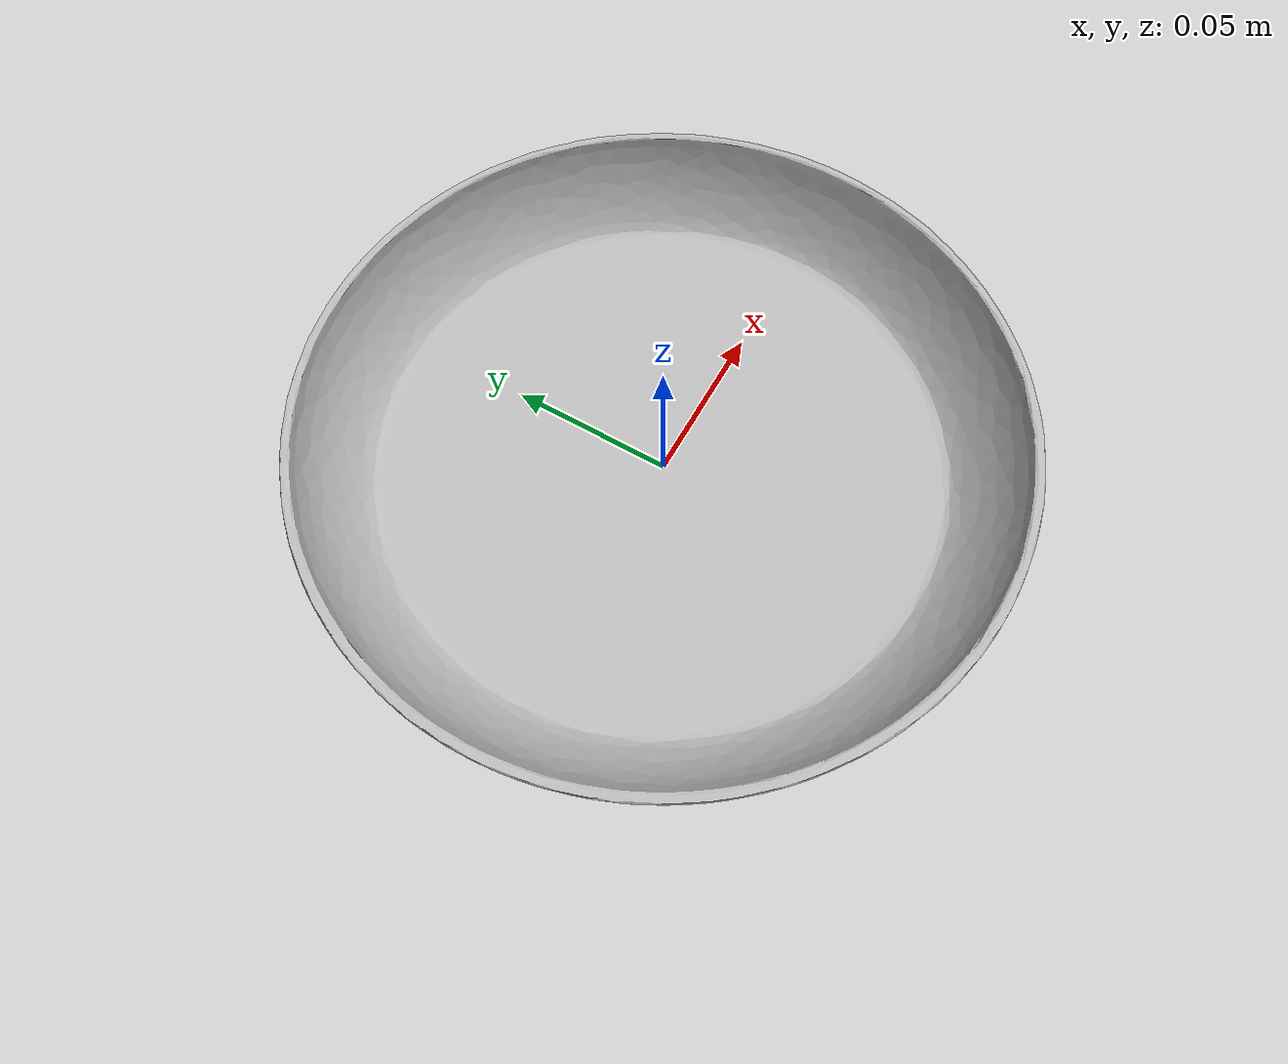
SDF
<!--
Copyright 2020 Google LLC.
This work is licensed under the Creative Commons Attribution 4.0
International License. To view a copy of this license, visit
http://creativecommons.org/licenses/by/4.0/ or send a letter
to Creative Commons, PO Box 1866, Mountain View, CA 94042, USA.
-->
<?xml version="1.0" ?>
<sdf version="1.6">
  <model name="Threshold_Dinner_Plate_Square_Rim_White_Porcelain">
    <link name="link_0">
      <visual name="visual">
        <geometry>
          <mesh>
            <uri>meshes/model.obj</uri>
          </mesh>
        </geometry>
      </visual>
      <collision name="collision_0">
        <geometry>
          <mesh>
            <uri>meshes/model.obj</uri>
          </mesh>
        </geometry>
      </collision>
    </link>
  </model>
</sdf>
